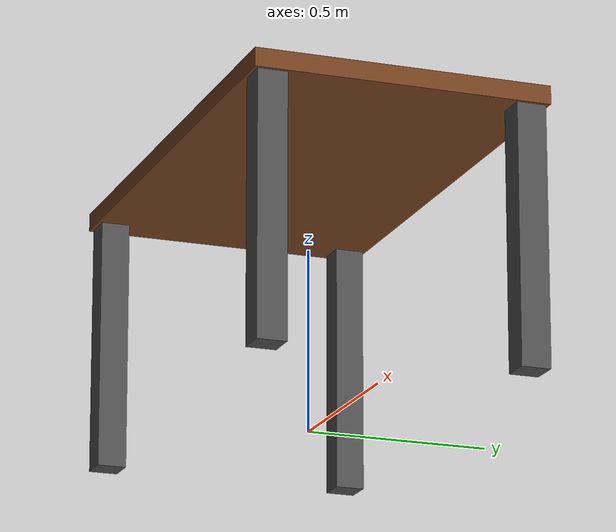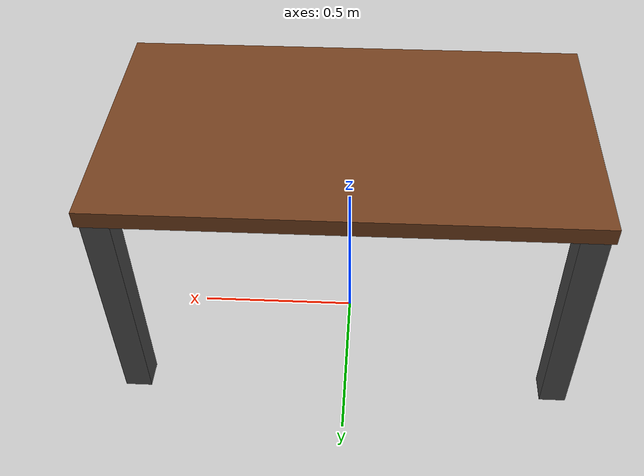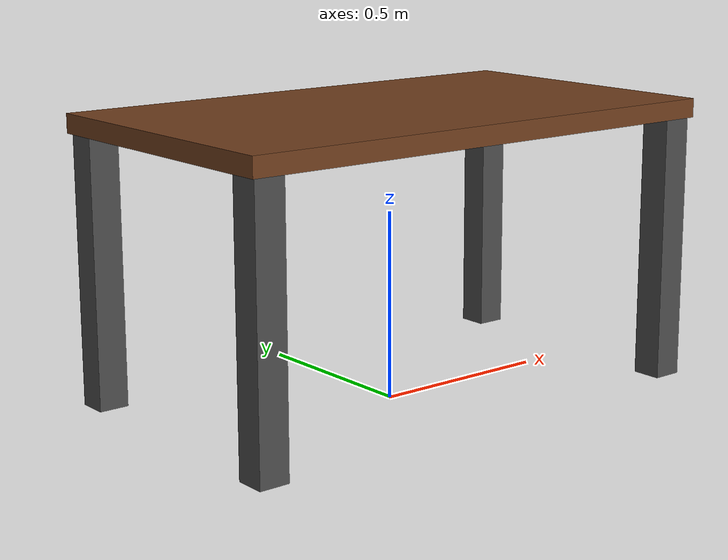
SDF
<?xml version="1.0"?>
<sdf version="1.10">
  <model name="Table">
    <static>true</static>
    <link name="table">
      <collision name="collision">
        <geometry>
          <box>
            <size>1.4 0.8 0.78</size>
          </box>
        </geometry>
      </collision>
      <visual name="top">
        <pose>0 0 0.75 0 0 0</pose>
        <geometry>
          <box>
            <size>1.4 0.8 0.05</size>
          </box>
        </geometry>
        <material>
          <ambient>0.35 0.2 0.1 1</ambient>
          <diffuse>0.45 0.25 0.12 1</diffuse>
          <specular>0.1 0.08 0.05 1</specular>
        </material>
      </visual>
      <visual name="leg_fl">
        <pose>0.65 0.35 0.375 0 0 0</pose>
        <geometry>
          <box>
            <size>0.08 0.08 0.7</size>
          </box>
        </geometry>
        <material>
          <ambient>0.2 0.2 0.2 1</ambient>
          <diffuse>0.3 0.3 0.3 1</diffuse>
        </material>
      </visual>
      <visual name="leg_fr">
        <pose>0.65 -0.35 0.375 0 0 0</pose>
        <geometry>
          <box>
            <size>0.08 0.08 0.7</size>
          </box>
        </geometry>
        <material>
          <ambient>0.2 0.2 0.2 1</ambient>
          <diffuse>0.3 0.3 0.3 1</diffuse>
        </material>
      </visual>
      <visual name="leg_rl">
        <pose>-0.65 0.35 0.375 0 0 0</pose>
        <geometry>
          <box>
            <size>0.08 0.08 0.7</size>
          </box>
        </geometry>
        <material>
          <ambient>0.2 0.2 0.2 1</ambient>
          <diffuse>0.3 0.3 0.3 1</diffuse>
        </material>
      </visual>
      <visual name="leg_rr">
        <pose>-0.65 -0.35 0.375 0 0 0</pose>
        <geometry>
          <box>
            <size>0.08 0.08 0.7</size>
          </box>
        </geometry>
        <material>
          <ambient>0.2 0.2 0.2 1</ambient>
          <diffuse>0.3 0.3 0.3 1</diffuse>
        </material>
      </visual>
      <inertial>
        <mass>15.0</mass>
        <inertia>
          <ixx>1.0</ixx>
          <iyy>1.0</iyy>
          <izz>1.0</izz>
          <ixy>0</ixy>
          <ixz>0</ixz>
          <iyz>0</iyz>
        </inertia>
      </inertial>
    </link>
  </model>
</sdf>
